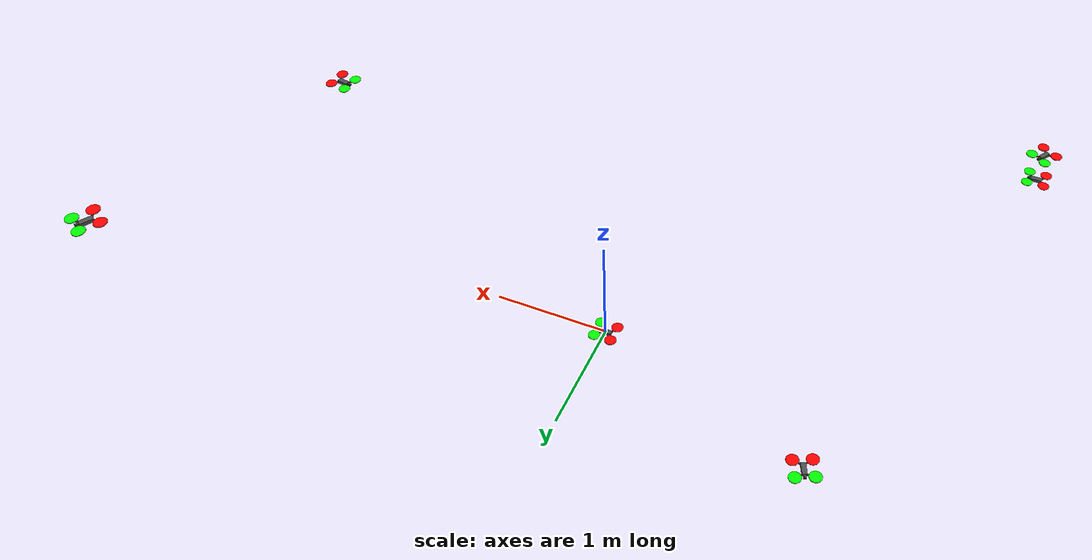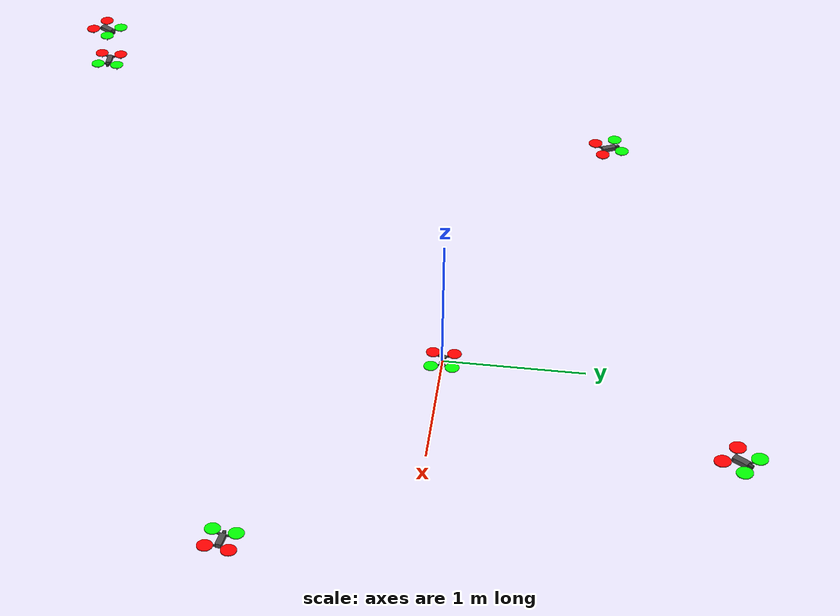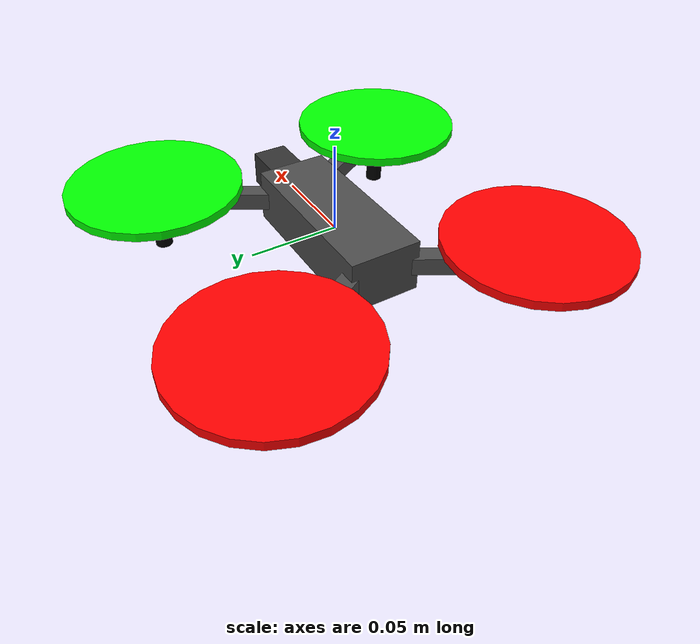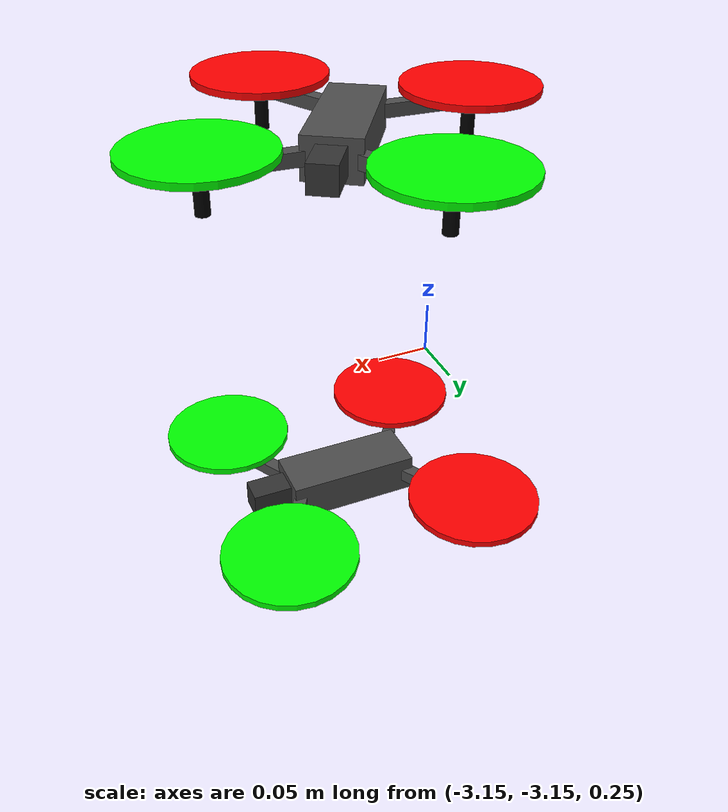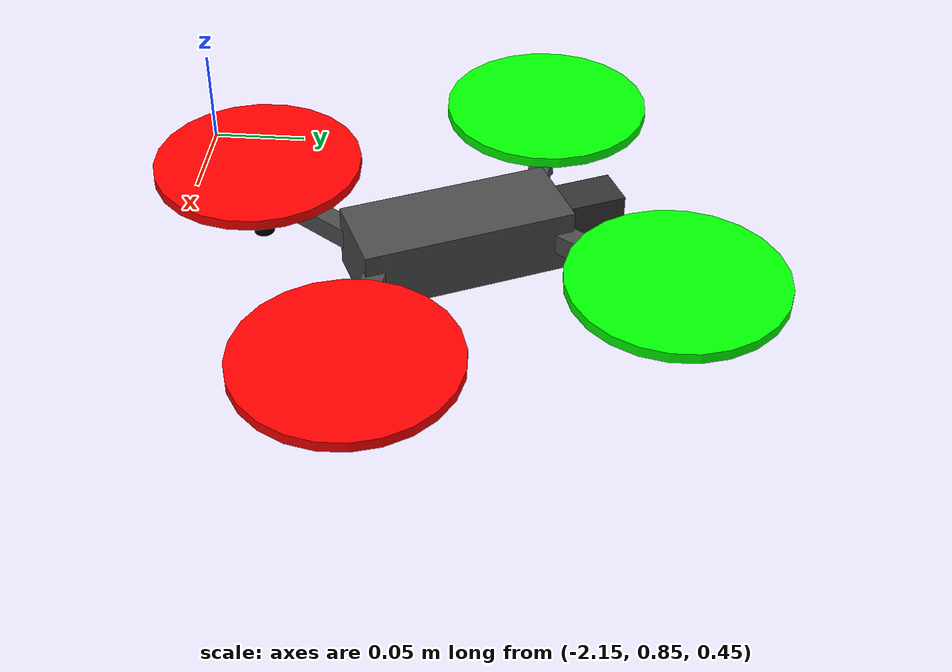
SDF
<?xml version="1.0" ?>
<sdf version="1.5">

<world name="tatami">

<!-- Area de juego -->
<include>
    <uri>../models/DCmodels/ground_plane/model.sdf</uri>
</include>

<!-- Base de aterrizaje -->
<include>
    <name>base_drone</name>
    <uri>../models/DCmodels/base_drone/model.sdf</uri>
    <pose>-3 -3 0.26 0 0 0</pose>
</include>

<!-- UAV -->
<include>
    <name>abejorro</name>
    <uri>../models/DCmodels/drone/model.sdf</uri>
    <pose>-3 -3 0.55 0 0 1</pose>
    <static>false</static>
</include>

<!-- Frames -->
<include>
    <name>frame_red</name>
    <uri>../models/DCmodels/frame_red/model.sdf</uri>
    <pose>3 2 2 0 0 1</pose>
</include>

<include>
    <name>frame_green</name>
    <uri>../models/DCmodels/frame_green/model.sdf</uri>
    <pose>-2 1 0.5 0 0 2</pose>
</include>

<include>
    <name>frame_blue</name>
    <uri>../models/DCmodels/frame_blue/model.sdf</uri>
    <pose>3 -1 1 0 0 3</pose>
</include>

<!-- Coordinates -->
<spherical_coordinates>
    <surface_model>EARTH_WGS84</surface_model>
    <latitude_deg>0</latitude_deg>
    <longitude_deg>0</longitude_deg>
    <elevation>0</elevation>
    <heading_deg>0</heading_deg>
</spherical_coordinates>

<!-- A global light source -->
<scene>
    <ambient>0.5 0.5 0.5 1.0</ambient>
    <shadows>true</shadows>
</scene>

<light type="directional" name="sun">
    <cast_shadows>true</cast_shadows>
    <pose>0 0 10 0 0 0</pose>
    <diffuse>0.8 0.8 0.8 1</diffuse>
    <specular>0.2 0.2 0.2 1</specular>
    <attenuation>
        <range>1000</range>
        <constant>1</constant>
    </attenuation>
    <direction>-0.5 0.1 -0.9</direction>
</light>

<!-- Own physics settings to speed up simulation -->
<physics type='ode'>
    <max_step_size>0.01</max_step_size>
    <real_time_factor>1.0</real_time_factor>
    <real_time_update_rate>100</real_time_update_rate>
    <gravity>0 0 -9.8</gravity>
</physics>

</world>
</sdf>

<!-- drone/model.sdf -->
<sdf version="1.5">

<model name="drone">

<static>false</static>

<link name='dronelink'>
    <!-- Rotores en distribucion cuadrada
         situados a 25 cms del centro de gravedad
    -->

    <visual name='fuselaje'>
        <pose>0 0 0 0 0 0</pose>
        <geometry>
          <box>
            <size>0.10 0.04 0.03</size>
          </box>
        </geometry>
        <material>
          <ambient>0.3 0.3 0.3 1</ambient>
          <diffuse>0.3 0.3 0.3 1</diffuse>
        </material>
    </visual>

    <collision name='fuselaje'>
        <pose>0 0 0 0 0 0</pose>
        <geometry>
          <box>
            <size>0.10 0.04 0.03</size>
          </box>
        </geometry>
        <surface>
          <friction>
            <ode>
              <mu>0.1</mu>
              <mu2>0.2</mu2>
              <slip1>1.0</slip1>
              <slip2>1.0</slip2>
            </ode>
          </friction>
        </surface>
    </collision>

    <visual name='camara'>
        <pose>0.065 0 0 0 0 0</pose>
        <geometry>
          <box>
            <size>0.03 0.02 0.02</size>
          </box>
        </geometry>
        <material>
          <ambient>0.2 0.2 0.2 1</ambient>
          <diffuse>0.2 0.2 0.2 1</diffuse>
        </material>
    </visual>

    <collision name='camara'>
        <pose>0.065 0 0 0 0 0</pose>
        <geometry>
          <box>
            <size>0.03 0.02 0.02</size>
          </box>
        </geometry>
        <surface>
          <friction>
            <ode>
              <mu>0.1</mu>
              <mu2>0.2</mu2>
              <slip1>1.0</slip1>
              <slip2>1.0</slip2>
            </ode>
          </friction>
        </surface>
    </collision>

    <visual name='brazo_NE'>
        <pose>0.0550 -0.0346 0 0 0 -1.0472</pose>
        <geometry>
          <box>
            <size>0.08 .01 .01</size>
          </box>
        </geometry>
        <material>
          <ambient>0.3 0.3 0.3 1</ambient>
          <diffuse>0.3 0.3 0.3 1</diffuse>
        </material>
    </visual>

    <collision name='brazo_NE'>
        <pose>0.0550 -0.0346 0 0 0 -1.0472</pose>
        <geometry>
          <box>
            <size>0.08 .01 .01</size>
          </box>
        </geometry>
        <surface>
          <friction>
            <ode>
              <mu>0.1</mu>
              <mu2>0.2</mu2>
              <slip1>1.0</slip1>
              <slip2>1.0</slip2>
            </ode>
          </friction>
        </surface>
    </collision>

    <visual name="motor_NE">
        <pose>0.0750 -0.0750 -0.01 0 0 0</pose>
        <geometry>
            <cylinder>
                <radius>.005</radius>
                <length>.04</length>
            </cylinder>
        </geometry>
        <material>
            <ambient>0 0 0 1</ambient>  <!--color Red Green Blue Alpha [0-1] -->
            <diffuse>0 0 0 1</diffuse>
        </material>
    </visual>

    <collision name="motor_NE">
        <pose>0.0750 -0.0750 -0.01 0 0 0</pose>
        <geometry>
            <cylinder>
                <radius>.005</radius>
                <length>.04</length>
            </cylinder>
        </geometry>
        <surface>
            <friction>
                <ode>
                <mu>100.0</mu>
                <mu2>50.0</mu2>
                <slip1>0.0</slip1>
                <slip2>0.0</slip2>
                </ode>
            </friction>
        </surface>
    </collision>

    <visual name="rotor_NE">
        <pose>0.0750 -0.0750 0.01 0 0 0</pose>
        <geometry>
            <cylinder>
                <radius>0.05</radius>
                <length>.005</length>
            </cylinder>
        </geometry>
	<material>
            <ambient>0 1 0 1</ambient>  <!--color Red Green Blue Alpha [0-1] -->
            <diffuse>0 1 0 1</diffuse>
        </material>
    </visual>

    <collision name="rotor_NE">
        <pose>0.0750 -0.0750 0.01 0 0 0</pose>
        <geometry>
            <cylinder>
                <radius>0.05</radius>
                <length>.005</length>
            </cylinder>
        </geometry>
        <surface>
            <friction>
                <ode>
                <mu>0.1</mu>
                <mu2>0.2</mu2>
                <slip1>1.0</slip1>
                <slip2>1.0</slip2>
                </ode>
            </friction>
        </surface>
    </collision>

    <visual name='brazo_NW'>
        <pose>0.0550 0.0346 0 0 0 1.0472</pose>
        <geometry>
          <box>
            <size>0.08 .01 .01</size>
          </box>
        </geometry>
        <material>
          <ambient>0.3 0.3 0.3 1</ambient>
          <diffuse>0.3 0.3 0.3 1</diffuse>
        </material>
    </visual>

    <collision name='brazo_NW'>
        <pose>0.0550 0.0346 0 0 0 1.0472</pose>
        <geometry>
          <box>
            <size>0.08 .01 .01</size>
          </box>
        </geometry>
        <surface>
          <friction>
            <ode>
              <mu>0.1</mu>
              <mu2>0.2</mu2>
              <slip1>1.0</slip1>
              <slip2>1.0</slip2>
            </ode>
          </friction>
        </surface>
    </collision>

    <visual name="motor_NW">
        <pose>0.0750 0.0750 -0.01 0 0 0</pose>
        <geometry>
            <cylinder>
                <radius>.005</radius>
                <length>.04</length>
            </cylinder>
        </geometry>
        <material>
            <ambient>0 0 0 1</ambient>  <!--color Red Green Blue Alpha [0-1] -->
            <diffuse>0 0 0 1</diffuse>
        </material>
    </visual>

    <collision name="motor_NW">
        <pose>0.0750 0.0750 -0.01 0 0 0</pose>
        <geometry>
            <cylinder>
                <radius>.005</radius>
                <length>.04</length>
            </cylinder>
        </geometry>
        <surface>
            <friction>
                <ode>
                <mu>100.0</mu>
                <mu2>50.0</mu2>
                <slip1>0.0</slip1>
                <slip2>0.0</slip2>
                </ode>
            </friction>
        </surface>
    </collision>

    <visual name="rotor_NW">
        <pose>0.0750 0.0750 0.01 0 0 0</pose>
        <geometry>
            <cylinder>
                <radius>0.05</radius>
                <length>.005</length>
            </cylinder>
        </geometry>
	<material>
            <ambient>0 1 0 1</ambient>  <!--color Red Green Blue Alpha [0-1] -->
            <diffuse>0 1 0 1</diffuse>
        </material>
    </visual>

    <collision name="rotor_NW">
        <pose>0.0750 0.0750 0.01 0 0 0</pose>
        <geometry>
            <cylinder>
                <radius>0.05</radius>
                <length>.005</length>
            </cylinder>
        </geometry>
        <surface>
            <friction>
                <ode>
                <mu>0.1</mu>
                <mu2>0.2</mu2>
                <slip1>1.0</slip1>
                <slip2>1.0</slip2>
                </ode>
            </friction>
        </surface>
    </collision>

    <visual name='brazo_SE'>
        <pose>-0.0550 -0.0346 0 0 0 1.0472</pose>
        <geometry>
          <box>
            <size>0.08 .01 .01</size>
          </box>
        </geometry>
        <material>
          <ambient>0.3 0.3 0.3 1</ambient>
          <diffuse>0.3 0.3 0.3 1</diffuse>
        </material>
    </visual>

    <collision name='brazo_SE'>
        <pose>-0.0550 -0.0346 0 0 0 1.0472</pose>
        <geometry>
          <box>
            <size>0.08 .01 .01</size>
          </box>
        </geometry>
        <surface>
          <friction>
            <ode>
              <mu>0.1</mu>
              <mu2>0.2</mu2>
              <slip1>1.0</slip1>
              <slip2>1.0</slip2>
            </ode>
          </friction>
        </surface>
    </collision>

    <visual name="motor_SE">
        <pose>-0.0750 -0.0750 -0.01 0 0 0</pose>
        <geometry>
            <cylinder>
                <radius>.005</radius>
                <length>.04</length>
            </cylinder>
        </geometry>
        <material>
            <ambient>0 0 0 1</ambient>  <!--color Red Green Blue Alpha [0-1] -->
            <diffuse>0 0 0 1</diffuse>
        </material>
    </visual>

    <collision name="motor_SE">
        <pose>-0.0750 -0.0750 -0.01 0 0 0</pose>
        <geometry>
            <cylinder>
                <radius>.005</radius>
                <length>.04</length>
            </cylinder>
        </geometry>
        <surface>
            <friction>
                <ode>
                <mu>100.0</mu>
                <mu2>50.0</mu2>
                <slip1>0.0</slip1>
                <slip2>0.0</slip2>
                </ode>
            </friction>
        </surface>
    </collision>

    <visual name="rotor_SE">
        <pose>-0.0750 -0.0750 0.01 0 0 0</pose>
        <geometry>
            <cylinder>
                <radius>0.05</radius>
                <length>.005</length>
            </cylinder>
        </geometry>
	<material>
            <ambient>1 0 0 1</ambient>  <!--color Red Green Blue Alpha [0-1] -->
            <diffuse>1 0 0 1</diffuse>
        </material>
    </visual>

    <collision name="rotor_SE">
        <pose>-0.0750 -0.0750 0.01 0 0 0</pose>
        <geometry>
            <cylinder>
                <radius>0.05</radius>
                <length>.005</length>
            </cylinder>
        </geometry>
        <surface>
            <friction>
                <ode>
                <mu>0.1</mu>
                <mu2>0.2</mu2>
                <slip1>1.0</slip1>
                <slip2>1.0</slip2>
                </ode>
            </friction>
        </surface>
    </collision>

    <visual name='brazo_SW'>
        <pose>-0.0550 0.0346 0 0 0 -1.0472</pose>
        <geometry>
          <box>
            <size>0.08 .01 .01</size>
          </box>
        </geometry>
        <material>
          <ambient>0.3 0.3 0.3 1</ambient>
          <diffuse>0.3 0.3 0.3 1</diffuse>
        </material>
    </visual>

    <collision name='brazo_SW'>
        <pose>-0.0550 0.0346 0 0 0 -1.0472</pose>
        <geometry>
          <box>
            <size>0.08 .01 .01</size>
          </box>
        </geometry>
        <surface>
          <friction>
            <ode>
              <mu>0.1</mu>
              <mu2>0.2</mu2>
              <slip1>1.0</slip1>
              <slip2>1.0</slip2>
            </ode>
          </friction>
        </surface>
    </collision>

    <visual name="motor_SW">
        <pose>-0.0750 0.0750 -0.01 0 0 0</pose>
        <geometry>
            <cylinder>
                <radius>.005</radius>
                <length>.04</length>
            </cylinder>
        </geometry>
        <material>
            <ambient>0 0 0 1</ambient>  <!--color Red Green Blue Alpha [0-1] -->
            <diffuse>0 0 0 1</diffuse>
        </material>
    </visual>

    <collision name="motor_SW">
        <pose>-0.0750 0.0750 -0.01 0 0 0</pose>
        <geometry>
            <cylinder>
                <radius>.005</radius>
                <length>.04</length>
            </cylinder>
        </geometry>
        <surface>
            <friction>
                <ode>
                <mu>100.0</mu>
                <mu2>50.0</mu2>
                <slip1>0.0</slip1>
                <slip2>0.0</slip2>
                </ode>
            </friction>
        </surface>
    </collision>

    <visual name="rotor_SW">
        <pose>-0.0750 0.0750 0.01 0 0 0</pose>
        <geometry>
            <cylinder>
                <radius>0.05</radius>
                <length>.005</length>
            </cylinder>
        </geometry>
	<material>
            <ambient>1 0 0 1</ambient>  <!--color Red Green Blue Alpha [0-1] -->
            <diffuse>1 0 0 1</diffuse>
        </material>
    </visual>

    <collision name="rotor_SW">
        <pose>-0.0750 0.0750 0.01 0 0 0</pose>
        <geometry>
            <cylinder>
                <radius>0.05</radius>
                <length>.005</length>
            </cylinder>
        </geometry>
        <surface>
            <friction>
                <ode>
                <mu>0.1</mu>
                <mu2>0.2</mu2>
                <slip1>1.0</slip1>
                <slip2>1.0</slip2>
                </ode>
            </friction>
        </surface>
    </collision>

    <inertial>
        <mass>0.300</mass>

        <inertia>                <!-- http://en.wikipedia.org/wiki/List_of_moments_of_inertia -->
          <ixx>0.001022500</ixx> <!-- for a box: ixx = 1/12 * mass * (y*y + z*z) -->
          <ixy>0.0</ixy>         <!-- for a box: ixy = 0 -->
          <ixz>0.0</ixz>         <!-- for a box: ixz = 0 -->
          <iyy>0.001022500</iyy> <!-- for a box: iyy = 1/12 * mass * (x*x + z*z) -->
          <iyz>0.0</iyz>         <!-- for a box: iyz = 0 -->
          <izz>0.002000000</izz> <!-- for a box: izz = 1/12 * mass * (x*x + y*y) -->
        </inertia>
    </inertial>

</link>

</model>

</sdf>
